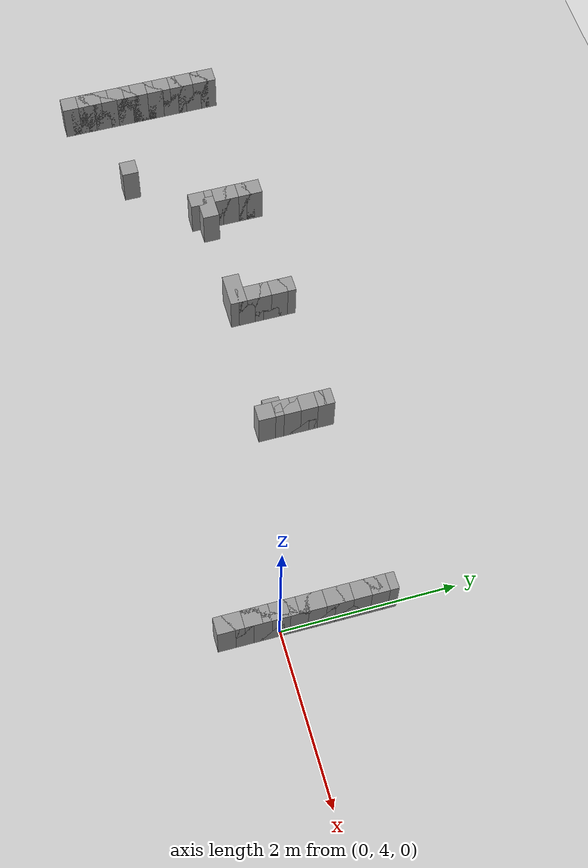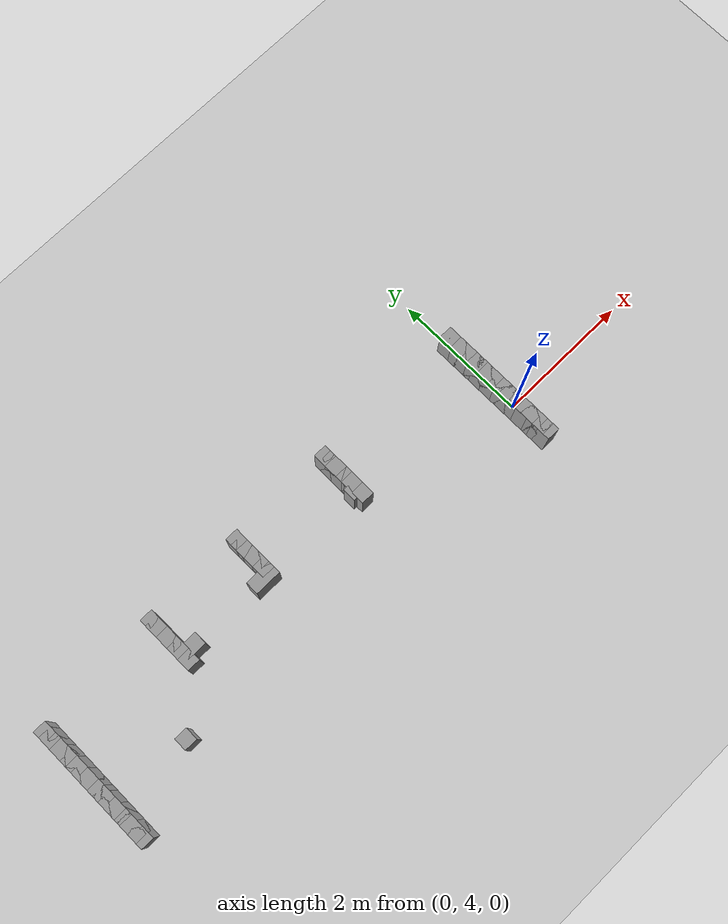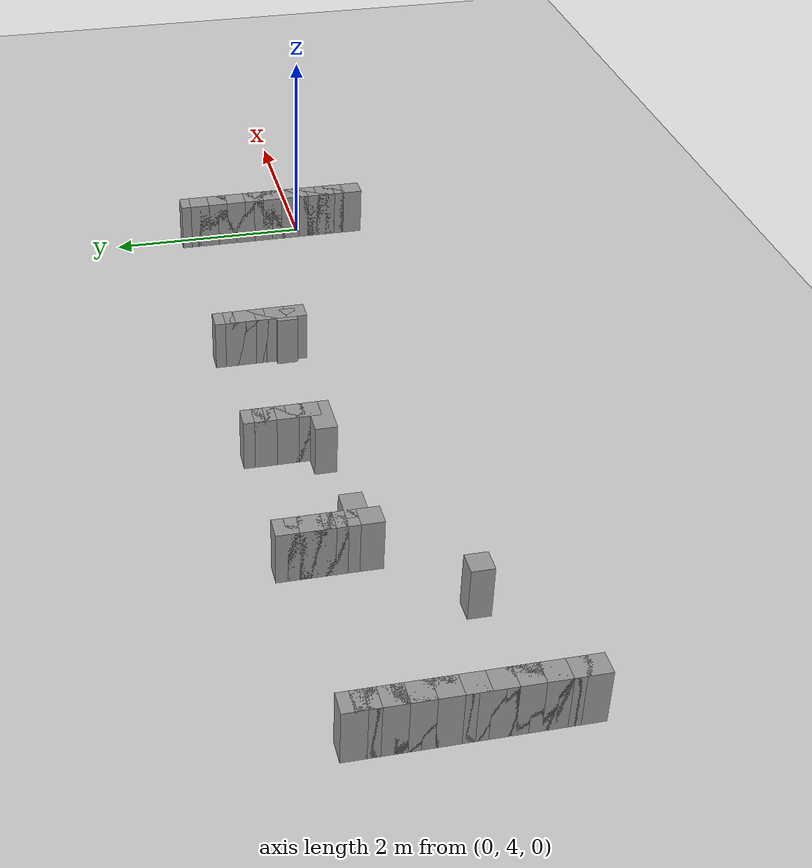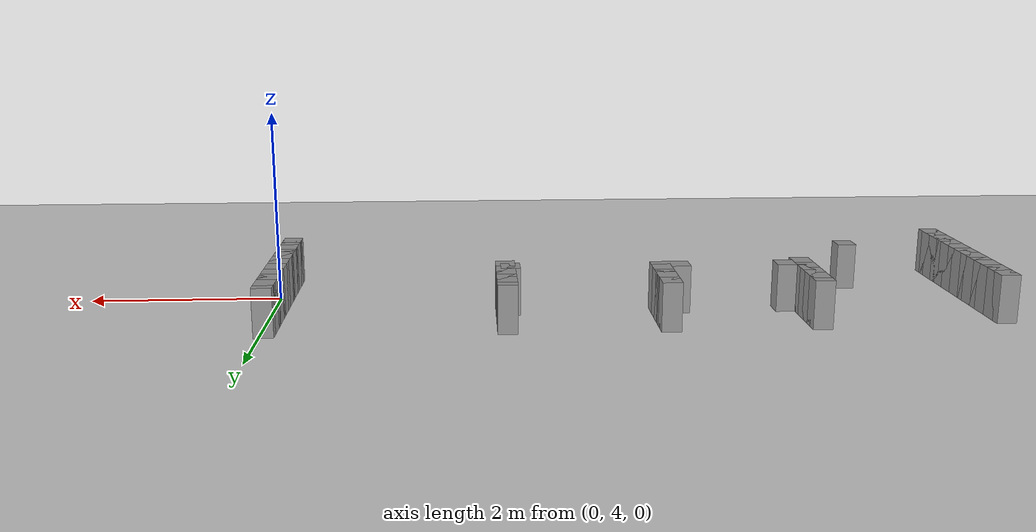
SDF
<sdf version="1.6">
 <world name="GridMap">
  <include><uri>model://sun</uri></include>
  <include><uri>model://ground_plane</uri></include>
  <model name="GridMap">
   <link name="Wall_(74.0,33.0)">
    <collision name="Wall_(74.0,33.0)_Collision">
     <geometry><box><size>0.2 0.2 0.5</size></box></geometry>
     <pose>-7.4 3.3000000000000003 0.25 0 -0 0</pose>
    </collision>
    <inertial>
     <mass>0.5</mass>
     <pose>0 0.01 0 0 0 0</pose>
     <inertia><ixx>0.004</ixx><ixy>0.001</ixy><ixz>0</ixz><iyy>0.006</iyy><iyz>0</iyz><izz>0.007</izz></inertia>
    </inertial>
    <visual name="Wall_(74.0,33.0)_Visual">
     <geometry><box><size>0.2 0.2 0.5</size></box></geometry>
     <pose>-7.4 3.3000000000000003 0.25 0 -0 0</pose>
     <material>
      <script><uri>file://media/materials/scripts/gazebo.material</uri><name>Gazebo/Grey</name></script>
      <ambient>1 1 1 1</ambient>
     </material>
     <meta><layer>0</layer></meta>
    </visual>
   </link>
   <link name="Wall_(0.5,34.0)">
    <collision name="Wall_(0.5,34.0)_Collision">
     <geometry><box><size>0.2 0.2 0.5</size></box></geometry>
     <pose>-0.05 3.4000000000000004 0.25 0 -0 0</pose>
    </collision>
    <inertial>
     <mass>0.5</mass>
     <pose>0 0.01 0 0 0 0</pose>
     <inertia><ixx>0.004</ixx><ixy>0.001</ixy><ixz>0</ixz><iyy>0.006</iyy><iyz>0</iyz><izz>0.007</izz></inertia>
    </inertial>
    <visual name="Wall_(0.5,34.0)_Visual">
     <geometry><box><size>0.2 0.2 0.5</size></box></geometry>
     <pose>-0.05 3.4000000000000004 0.25 0 -0 0</pose>
     <material>
      <script><uri>file://media/materials/scripts/gazebo.material</uri><name>Gazebo/Grey</name></script>
      <ambient>1 1 1 1</ambient>
     </material>
     <meta><layer>0</layer></meta>
    </visual>
   </link>
   <link name="Wall_(74.0,34.0)">
    <collision name="Wall_(74.0,34.0)_Collision">
     <geometry><box><size>0.2 0.2 0.5</size></box></geometry>
     <pose>-7.4 3.4000000000000004 0.25 0 -0 0</pose>
    </collision>
    <inertial>
     <mass>0.5</mass>
     <pose>0 0.01 0 0 0 0</pose>
     <inertia><ixx>0.004</ixx><ixy>0.001</ixy><ixz>0</ixz><iyy>0.006</iyy><iyz>0</iyz><izz>0.007</izz></inertia>
    </inertial>
    <visual name="Wall_(74.0,34.0)_Visual">
     <geometry><box><size>0.2 0.2 0.5</size></box></geometry>
     <pose>-7.4 3.4000000000000004 0.25 0 -0 0</pose>
     <material>
      <script><uri>file://media/materials/scripts/gazebo.material</uri><name>Gazebo/Grey</name></script>
      <ambient>1 1 1 1</ambient>
     </material>
     <meta><layer>0</layer></meta>
    </visual>
   </link>
   <link name="Wall_(0.5,35.0)">
    <collision name="Wall_(0.5,35.0)_Collision">
     <geometry><box><size>0.2 0.2 0.5</size></box></geometry>
     <pose>-0.05 3.5 0.25 0 -0 0</pose>
    </collision>
    <inertial>
     <mass>0.5</mass>
     <pose>0 0.01 0 0 0 0</pose>
     <inertia><ixx>0.004</ixx><ixy>0.001</ixy><ixz>0</ixz><iyy>0.006</iyy><iyz>0</iyz><izz>0.007</izz></inertia>
    </inertial>
    <visual name="Wall_(0.5,35.0)_Visual">
     <geometry><box><size>0.2 0.2 0.5</size></box></geometry>
     <pose>-0.05 3.5 0.25 0 -0 0</pose>
     <material>
      <script><uri>file://media/materials/scripts/gazebo.material</uri><name>Gazebo/Grey</name></script>
      <ambient>1 1 1 1</ambient>
     </material>
     <meta><layer>0</layer></meta>
    </visual>
   </link>
   <link name="Wall_(74.0,35.0)">
    <collision name="Wall_(74.0,35.0)_Collision">
     <geometry><box><size>0.2 0.2 0.5</size></box></geometry>
     <pose>-7.4 3.5 0.25 0 -0 0</pose>
    </collision>
    <inertial>
     <mass>0.5</mass>
     <pose>0 0.01 0 0 0 0</pose>
     <inertia><ixx>0.004</ixx><ixy>0.001</ixy><ixz>0</ixz><iyy>0.006</iyy><iyz>0</iyz><izz>0.007</izz></inertia>
    </inertial>
    <visual name="Wall_(74.0,35.0)_Visual">
     <geometry><box><size>0.2 0.2 0.5</size></box></geometry>
     <pose>-7.4 3.5 0.25 0 -0 0</pose>
     <material>
      <script><uri>file://media/materials/scripts/gazebo.material</uri><name>Gazebo/Grey</name></script>
      <ambient>1 1 1 1</ambient>
     </material>
     <meta><layer>0</layer></meta>
    </visual>
   </link>
   <link name="Wall_(0.5,36.0)">
    <collision name="Wall_(0.5,36.0)_Collision">
     <geometry><box><size>0.2 0.2 0.5</size></box></geometry>
     <pose>-0.05 3.6 0.25 0 -0 0</pose>
    </collision>
    <inertial>
     <mass>0.5</mass>
     <pose>0 0.01 0 0 0 0</pose>
     <inertia><ixx>0.004</ixx><ixy>0.001</ixy><ixz>0</ixz><iyy>0.006</iyy><iyz>0</iyz><izz>0.007</izz></inertia>
    </inertial>
    <visual name="Wall_(0.5,36.0)_Visual">
     <geometry><box><size>0.2 0.2 0.5</size></box></geometry>
     <pose>-0.05 3.6 0.25 0 -0 0</pose>
     <material>
      <script><uri>file://media/materials/scripts/gazebo.material</uri><name>Gazebo/Grey</name></script>
      <ambient>1 1 1 1</ambient>
     </material>
     <meta><layer>0</layer></meta>
    </visual>
   </link>
   <link name="Wall_(74.0,36.0)">
    <collision name="Wall_(74.0,36.0)_Collision">
     <geometry><box><size>0.2 0.2 0.5</size></box></geometry>
     <pose>-7.4 3.6 0.25 0 -0 0</pose>
    </collision>
    <inertial>
     <mass>0.5</mass>
     <pose>0 0.01 0 0 0 0</pose>
     <inertia><ixx>0.004</ixx><ixy>0.001</ixy><ixz>0</ixz><iyy>0.006</iyy><iyz>0</iyz><izz>0.007</izz></inertia>
    </inertial>
    <visual name="Wall_(74.0,36.0)_Visual">
     <geometry><box><size>0.2 0.2 0.5</size></box></geometry>
     <pose>-7.4 3.6 0.25 0 -0 0</pose>
     <material>
      <script><uri>file://media/materials/scripts/gazebo.material</uri><name>Gazebo/Grey</name></script>
      <ambient>1 1 1 1</ambient>
     </material>
     <meta><layer>0</layer></meta>
    </visual>
   </link>
   <link name="Wall_(0.5,37.0)">
    <collision name="Wall_(0.5,37.0)_Collision">
     <geometry><box><size>0.2 0.2 0.5</size></box></geometry>
     <pose>-0.05 3.7 0.25 0 -0 0</pose>
    </collision>
    <inertial>
     <mass>0.5</mass>
     <pose>0 0.01 0 0 0 0</pose>
     <inertia><ixx>0.004</ixx><ixy>0.001</ixy><ixz>0</ixz><iyy>0.006</iyy><iyz>0</iyz><izz>0.007</izz></inertia>
    </inertial>
    <visual name="Wall_(0.5,37.0)_Visual">
     <geometry><box><size>0.2 0.2 0.5</size></box></geometry>
     <pose>-0.05 3.7 0.25 0 -0 0</pose>
     <material>
      <script><uri>file://media/materials/scripts/gazebo.material</uri><name>Gazebo/Grey</name></script>
      <ambient>1 1 1 1</ambient>
     </material>
     <meta><layer>0</layer></meta>
    </visual>
   </link>
   <link name="Wall_(74.0,37.0)">
    <collision name="Wall_(74.0,37.0)_Collision">
     <geometry><box><size>0.2 0.2 0.5</size></box></geometry>
     <pose>-7.4 3.7 0.25 0 -0 0</pose>
    </collision>
    <inertial>
     <mass>0.5</mass>
     <pose>0 0.01 0 0 0 0</pose>
     <inertia><ixx>0.004</ixx><ixy>0.001</ixy><ixz>0</ixz><iyy>0.006</iyy><iyz>0</iyz><izz>0.007</izz></inertia>
    </inertial>
    <visual name="Wall_(74.0,37.0)_Visual">
     <geometry><box><size>0.2 0.2 0.5</size></box></geometry>
     <pose>-7.4 3.7 0.25 0 -0 0</pose>
     <material>
      <script><uri>file://media/materials/scripts/gazebo.material</uri><name>Gazebo/Grey</name></script>
      <ambient>1 1 1 1</ambient>
     </material>
     <meta><layer>0</layer></meta>
    </visual>
   </link>
   <link name="Wall_(0.5,38.0)">
    <collision name="Wall_(0.5,38.0)_Collision">
     <geometry><box><size>0.2 0.2 0.5</size></box></geometry>
     <pose>-0.05 3.8000000000000003 0.25 0 -0 0</pose>
    </collision>
    <inertial>
     <mass>0.5</mass>
     <pose>0 0.01 0 0 0 0</pose>
     <inertia><ixx>0.004</ixx><ixy>0.001</ixy><ixz>0</ixz><iyy>0.006</iyy><iyz>0</iyz><izz>0.007</izz></inertia>
    </inertial>
    <visual name="Wall_(0.5,38.0)_Visual">
     <geometry><box><size>0.2 0.2 0.5</size></box></geometry>
     <pose>-0.05 3.8000000000000003 0.25 0 -0 0</pose>
     <material>
      <script><uri>file://media/materials/scripts/gazebo.material</uri><name>Gazebo/Grey</name></script>
      <ambient>1 1 1 1</ambient>
     </material>
     <meta><layer>0</layer></meta>
    </visual>
   </link>
   <link name="Wall_(62.0,38.0)">
    <collision name="Wall_(62.0,38.0)_Collision">
     <geometry><box><size>0.2 0.2 0.5</size></box></geometry>
     <pose>-6.2 3.8000000000000003 0.25 0 -0 0</pose>
    </collision>
    <inertial>
     <mass>0.5</mass>
     <pose>0 0.01 0 0 0 0</pose>
     <inertia><ixx>0.004</ixx><ixy>0.001</ixy><ixz>0</ixz><iyy>0.006</iyy><iyz>0</iyz><izz>0.007</izz></inertia>
    </inertial>
    <visual name="Wall_(62.0,38.0)_Visual">
     <geometry><box><size>0.2 0.2 0.5</size></box></geometry>
     <pose>-6.2 3.8000000000000003 0.25 0 -0 0</pose>
     <material>
      <script><uri>file://media/materials/scripts/gazebo.material</uri><name>Gazebo/Grey</name></script>
      <ambient>1 1 1 1</ambient>
     </material>
     <meta><layer>0</layer></meta>
    </visual>
   </link>
   <link name="Wall_(74.0,38.0)">
    <collision name="Wall_(74.0,38.0)_Collision">
     <geometry><box><size>0.2 0.2 0.5</size></box></geometry>
     <pose>-7.4 3.8000000000000003 0.25 0 -0 0</pose>
    </collision>
    <inertial>
     <mass>0.5</mass>
     <pose>0 0.01 0 0 0 0</pose>
     <inertia><ixx>0.004</ixx><ixy>0.001</ixy><ixz>0</ixz><iyy>0.006</iyy><iyz>0</iyz><izz>0.007</izz></inertia>
    </inertial>
    <visual name="Wall_(74.0,38.0)_Visual">
     <geometry><box><size>0.2 0.2 0.5</size></box></geometry>
     <pose>-7.4 3.8000000000000003 0.25 0 -0 0</pose>
     <material>
      <script><uri>file://media/materials/scripts/gazebo.material</uri><name>Gazebo/Grey</name></script>
      <ambient>1 1 1 1</ambient>
     </material>
     <meta><layer>0</layer></meta>
    </visual>
   </link>
   <link name="Wall_(0.5,39.0)">
    <collision name="Wall_(0.5,39.0)_Collision">
     <geometry><box><size>0.2 0.2 0.5</size></box></geometry>
     <pose>-0.05 3.9000000000000004 0.25 0 -0 0</pose>
    </collision>
    <inertial>
     <mass>0.5</mass>
     <pose>0 0.01 0 0 0 0</pose>
     <inertia><ixx>0.004</ixx><ixy>0.001</ixy><ixz>0</ixz><iyy>0.006</iyy><iyz>0</iyz><izz>0.007</izz></inertia>
    </inertial>
    <visual name="Wall_(0.5,39.0)_Visual">
     <geometry><box><size>0.2 0.2 0.5</size></box></geometry>
     <pose>-0.05 3.9000000000000004 0.25 0 -0 0</pose>
     <material>
      <script><uri>file://media/materials/scripts/gazebo.material</uri><name>Gazebo/Grey</name></script>
      <ambient>1 1 1 1</ambient>
     </material>
     <meta><layer>0</layer></meta>
    </visual>
   </link>
   <link name="Wall_(74.0,39.0)">
    <collision name="Wall_(74.0,39.0)_Collision">
     <geometry><box><size>0.2 0.2 0.5</size></box></geometry>
     <pose>-7.4 3.9000000000000004 0.25 0 -0 0</pose>
    </collision>
    <inertial>
     <mass>0.5</mass>
     <pose>0 0.01 0 0 0 0</pose>
     <inertia><ixx>0.004</ixx><ixy>0.001</ixy><ixz>0</ixz><iyy>0.006</iyy><iyz>0</iyz><izz>0.007</izz></inertia>
    </inertial>
    <visual name="Wall_(74.0,39.0)_Visual">
     <geometry><box><size>0.2 0.2 0.5</size></box></geometry>
     <pose>-7.4 3.9000000000000004 0.25 0 -0 0</pose>
     <material>
      <script><uri>file://media/materials/scripts/gazebo.material</uri><name>Gazebo/Grey</name></script>
      <ambient>1 1 1 1</ambient>
     </material>
     <meta><layer>0</layer></meta>
    </visual>
   </link>
   <link name="Wall_(0.5,40.0)">
    <collision name="Wall_(0.5,40.0)_Collision">
     <geometry><box><size>0.2 0.2 0.5</size></box></geometry>
     <pose>-0.05 4.0 0.25 0 -0 0</pose>
    </collision>
    <inertial>
     <mass>0.5</mass>
     <pose>0 0.01 0 0 0 0</pose>
     <inertia><ixx>0.004</ixx><ixy>0.001</ixy><ixz>0</ixz><iyy>0.006</iyy><iyz>0</iyz><izz>0.007</izz></inertia>
    </inertial>
    <visual name="Wall_(0.5,40.0)_Visual">
     <geometry><box><size>0.2 0.2 0.5</size></box></geometry>
     <pose>-0.05 4.0 0.25 0 -0 0</pose>
     <material>
      <script><uri>file://media/materials/scripts/gazebo.material</uri><name>Gazebo/Grey</name></script>
      <ambient>1 1 1 1</ambient>
     </material>
     <meta><layer>0</layer></meta>
    </visual>
   </link>
   <link name="Wall_(74.0,40.0)">
    <collision name="Wall_(74.0,40.0)_Collision">
     <geometry><box><size>0.2 0.2 0.5</size></box></geometry>
     <pose>-7.4 4.0 0.25 0 -0 0</pose>
    </collision>
    <inertial>
     <mass>0.5</mass>
     <pose>0 0.01 0 0 0 0</pose>
     <inertia><ixx>0.004</ixx><ixy>0.001</ixy><ixz>0</ixz><iyy>0.006</iyy><iyz>0</iyz><izz>0.007</izz></inertia>
    </inertial>
    <visual name="Wall_(74.0,40.0)_Visual">
     <geometry><box><size>0.2 0.2 0.5</size></box></geometry>
     <pose>-7.4 4.0 0.25 0 -0 0</pose>
     <material>
      <script><uri>file://media/materials/scripts/gazebo.material</uri><name>Gazebo/Grey</name></script>
      <ambient>1 1 1 1</ambient>
     </material>
     <meta><layer>0</layer></meta>
    </visual>
   </link>
   <link name="Wall_(0.5,41.0)">
    <collision name="Wall_(0.5,41.0)_Collision">
     <geometry><box><size>0.2 0.2 0.5</size></box></geometry>
     <pose>-0.05 4.1000000000000005 0.25 0 -0 0</pose>
    </collision>
    <inertial>
     <mass>0.5</mass>
     <pose>0 0.01 0 0 0 0</pose>
     <inertia><ixx>0.004</ixx><ixy>0.001</ixy><ixz>0</ixz><iyy>0.006</iyy><iyz>0</iyz><izz>0.007</izz></inertia>
    </inertial>
    <visual name="Wall_(0.5,41.0)_Visual">
     <geometry><box><size>0.2 0.2 0.5</size></box></geometry>
     <pose>-0.05 4.1000000000000005 0.25 0 -0 0</pose>
     <material>
      <script><uri>file://media/materials/scripts/gazebo.material</uri><name>Gazebo/Grey</name></script>
      <ambient>1 1 1 1</ambient>
     </material>
     <meta><layer>0</layer></meta>
    </visual>
   </link>
   <link name="Wall_(74.0,41.0)">
    <collision name="Wall_(74.0,41.0)_Collision">
     <geometry><box><size>0.2 0.2 0.5</size></box></geometry>
     <pose>-7.4 4.1000000000000005 0.25 0 -0 0</pose>
    </collision>
    <inertial>
     <mass>0.5</mass>
     <pose>0 0.01 0 0 0 0</pose>
     <inertia><ixx>0.004</ixx><ixy>0.001</ixy><ixz>0</ixz><iyy>0.006</iyy><iyz>0</iyz><izz>0.007</izz></inertia>
    </inertial>
    <visual name="Wall_(74.0,41.0)_Visual">
     <geometry><box><size>0.2 0.2 0.5</size></box></geometry>
     <pose>-7.4 4.1000000000000005 0.25 0 -0 0</pose>
     <material>
      <script><uri>file://media/materials/scripts/gazebo.material</uri><name>Gazebo/Grey</name></script>
      <ambient>1 1 1 1</ambient>
     </material>
     <meta><layer>0</layer></meta>
    </visual>
   </link>
   <link name="Wall_(0.5,42.0)">
    <collision name="Wall_(0.5,42.0)_Collision">
     <geometry><box><size>0.2 0.2 0.5</size></box></geometry>
     <pose>-0.05 4.2 0.25 0 -0 0</pose>
    </collision>
    <inertial>
     <mass>0.5</mass>
     <pose>0 0.01 0 0 0 0</pose>
     <inertia><ixx>0.004</ixx><ixy>0.001</ixy><ixz>0</ixz><iyy>0.006</iyy><iyz>0</iyz><izz>0.007</izz></inertia>
    </inertial>
    <visual name="Wall_(0.5,42.0)_Visual">
     <geometry><box><size>0.2 0.2 0.5</size></box></geometry>
     <pose>-0.05 4.2 0.25 0 -0 0</pose>
     <material>
      <script><uri>file://media/materials/scripts/gazebo.material</uri><name>Gazebo/Grey</name></script>
      <ambient>1 1 1 1</ambient>
     </material>
     <meta><layer>0</layer></meta>
    </visual>
   </link>
   <link name="Wall_(74.0,42.0)">
    <collision name="Wall_(74.0,42.0)_Collision">
     <geometry><box><size>0.2 0.2 0.5</size></box></geometry>
     <pose>-7.4 4.2 0.25 0 -0 0</pose>
    </collision>
    <inertial>
     <mass>0.5</mass>
     <pose>0 0.01 0 0 0 0</pose>
     <inertia><ixx>0.004</ixx><ixy>0.001</ixy><ixz>0</ixz><iyy>0.006</iyy><iyz>0</iyz><izz>0.007</izz></inertia>
    </inertial>
    <visual name="Wall_(74.0,42.0)_Visual">
     <geometry><box><size>0.2 0.2 0.5</size></box></geometry>
     <pose>-7.4 4.2 0.25 0 -0 0</pose>
     <material>
      <script><uri>file://media/materials/scripts/gazebo.material</uri><name>Gazebo/Grey</name></script>
      <ambient>1 1 1 1</ambient>
     </material>
     <meta><layer>0</layer></meta>
    </visual>
   </link>
   <link name="Wall_(0.5,43.0)">
    <collision name="Wall_(0.5,43.0)_Collision">
     <geometry><box><size>0.2 0.2 0.5</size></box></geometry>
     <pose>-0.05 4.3 0.25 0 -0 0</pose>
    </collision>
    <inertial>
     <mass>0.5</mass>
     <pose>0 0.01 0 0 0 0</pose>
     <inertia><ixx>0.004</ixx><ixy>0.001</ixy><ixz>0</ixz><iyy>0.006</iyy><iyz>0</iyz><izz>0.007</izz></inertia>
    </inertial>
    <visual name="Wall_(0.5,43.0)_Visual">
     <geometry><box><size>0.2 0.2 0.5</size></box></geometry>
     <pose>-0.05 4.3 0.25 0 -0 0</pose>
     <material>
      <script><uri>file://media/materials/scripts/gazebo.material</uri><name>Gazebo/Grey</name></script>
      <ambient>1 1 1 1</ambient>
     </material>
     <meta><layer>0</layer></meta>
    </visual>
   </link>
   <link name="Wall_(74.0,43.0)">
    <collision name="Wall_(74.0,43.0)_Collision">
     <geometry><box><size>0.2 0.2 0.5</size></box></geometry>
     <pose>-7.4 4.3 0.25 0 -0 0</pose>
    </collision>
    <inertial>
     <mass>0.5</mass>
     <pose>0 0.01 0 0 0 0</pose>
     <inertia><ixx>0.004</ixx><ixy>0.001</ixy><ixz>0</ixz><iyy>0.006</iyy><iyz>0</iyz><izz>0.007</izz></inertia>
    </inertial>
    <visual name="Wall_(74.0,43.0)_Visual">
     <geometry><box><size>0.2 0.2 0.5</size></box></geometry>
     <pose>-7.4 4.3 0.25 0 -0 0</pose>
     <material>
      <script><uri>file://media/materials/scripts/gazebo.material</uri><name>Gazebo/Grey</name></script>
      <ambient>1 1 1 1</ambient>
     </material>
     <meta><layer>0</layer></meta>
    </visual>
   </link>
   <link name="Wall_(0.5,44.0)">
    <collision name="Wall_(0.5,44.0)_Collision">
     <geometry><box><size>0.2 0.2 0.5</size></box></geometry>
     <pose>-0.05 4.4 0.25 0 -0 0</pose>
    </collision>
    <inertial>
     <mass>0.5</mass>
     <pose>0 0.01 0 0 0 0</pose>
     <inertia><ixx>0.004</ixx><ixy>0.001</ixy><ixz>0</ixz><iyy>0.006</iyy><iyz>0</iyz><izz>0.007</izz></inertia>
    </inertial>
    <visual name="Wall_(0.5,44.0)_Visual">
     <geometry><box><size>0.2 0.2 0.5</size></box></geometry>
     <pose>-0.05 4.4 0.25 0 -0 0</pose>
     <material>
      <script><uri>file://media/materials/scripts/gazebo.material</uri><name>Gazebo/Grey</name></script>
      <ambient>1 1 1 1</ambient>
     </material>
     <meta><layer>0</layer></meta>
    </visual>
   </link>
   <link name="Wall_(74.0,44.0)">
    <collision name="Wall_(74.0,44.0)_Collision">
     <geometry><box><size>0.2 0.2 0.5</size></box></geometry>
     <pose>-7.4 4.4 0.25 0 -0 0</pose>
    </collision>
    <inertial>
     <mass>0.5</mass>
     <pose>0 0.01 0 0 0 0</pose>
     <inertia><ixx>0.004</ixx><ixy>0.001</ixy><ixz>0</ixz><iyy>0.006</iyy><iyz>0</iyz><izz>0.007</izz></inertia>
    </inertial>
    <visual name="Wall_(74.0,44.0)_Visual">
     <geometry><box><size>0.2 0.2 0.5</size></box></geometry>
     <pose>-7.4 4.4 0.25 0 -0 0</pose>
     <material>
      <script><uri>file://media/materials/scripts/gazebo.material</uri><name>Gazebo/Grey</name></script>
      <ambient>1 1 1 1</ambient>
     </material>
     <meta><layer>0</layer></meta>
    </visual>
   </link>
   <link name="Wall_(0.5,45.0)">
    <collision name="Wall_(0.5,45.0)_Collision">
     <geometry><box><size>0.2 0.2 0.5</size></box></geometry>
     <pose>-0.05 4.5 0.25 0 -0 0</pose>
    </collision>
    <inertial>
     <mass>0.5</mass>
     <pose>0 0.01 0 0 0 0</pose>
     <inertia><ixx>0.004</ixx><ixy>0.001</ixy><ixz>0</ixz><iyy>0.006</iyy><iyz>0</iyz><izz>0.007</izz></inertia>
    </inertial>
    <visual name="Wall_(0.5,45.0)_Visual">
     <geometry><box><size>0.2 0.2 0.5</size></box></geometry>
     <pose>-0.05 4.5 0.25 0 -0 0</pose>
     <material>
      <script><uri>file://media/materials/scripts/gazebo.material</uri><name>Gazebo/Grey</name></script>
      <ambient>1 1 1 1</ambient>
     </material>
     <meta><layer>0</layer></meta>
    </visual>
   </link>
   <link name="Wall_(24.0,45.0)">
    <collision name="Wall_(24.0,45.0)_Collision">
     <geometry><box><size>0.2 0.2 0.5</size></box></geometry>
     <pose>-2.4000000000000004 4.5 0.25 0 -0 0</pose>
    </collision>
    <inertial>
     <mass>0.5</mass>
     <pose>0 0.01 0 0 0 0</pose>
     <inertia><ixx>0.004</ixx><ixy>0.001</ixy><ixz>0</ixz><iyy>0.006</iyy><iyz>0</iyz><izz>0.007</izz></inertia>
    </inertial>
    <visual name="Wall_(24.0,45.0)_Visual">
     <geometry><box><size>0.2 0.2 0.5</size></box></geometry>
     <pose>-2.4000000000000004 4.5 0.25 0 -0 0</pose>
     <material>
      <script><uri>file://media/materials/scripts/gazebo.material</uri><name>Gazebo/Grey</name></script>
      <ambient>1 1 1 1</ambient>
     </material>
     <meta><layer>0</layer></meta>
    </visual>
   </link>
   <link name="Wall_(55.0,45.0)">
    <collision name="Wall_(55.0,45.0)_Collision">
     <geometry><box><size>0.2 0.2 0.5</size></box></geometry>
     <pose>-5.5 4.5 0.25 0 -0 0</pose>
    </collision>
    <inertial>
     <mass>0.5</mass>
     <pose>0 0.01 0 0 0 0</pose>
     <inertia><ixx>0.004</ixx><ixy>0.001</ixy><ixz>0</ixz><iyy>0.006</iyy><iyz>0</iyz><izz>0.007</izz></inertia>
    </inertial>
    <visual name="Wall_(55.0,45.0)_Visual">
     <geometry><box><size>0.2 0.2 0.5</size></box></geometry>
     <pose>-5.5 4.5 0.25 0 -0 0</pose>
     <material>
      <script><uri>file://media/materials/scripts/gazebo.material</uri><name>Gazebo/Grey</name></script>
      <ambient>1 1 1 1</ambient>
     </material>
     <meta><layer>0</layer></meta>
    </visual>
   </link>
   <link name="Wall_(74.0,45.0)">
    <collision name="Wall_(74.0,45.0)_Collision">
     <geometry><box><size>0.2 0.2 0.5</size></box></geometry>
     <pose>-7.4 4.5 0.25 0 -0 0</pose>
    </collision>
    <inertial>
     <mass>0.5</mass>
     <pose>0 0.01 0 0 0 0</pose>
     <inertia><ixx>0.004</ixx><ixy>0.001</ixy><ixz>0</ixz><iyy>0.006</iyy><iyz>0</iyz><izz>0.007</izz></inertia>
    </inertial>
    <visual name="Wall_(74.0,45.0)_Visual">
     <geometry><box><size>0.2 0.2 0.5</size></box></geometry>
     <pose>-7.4 4.5 0.25 0 -0 0</pose>
     <material>
      <script><uri>file://media/materials/scripts/gazebo.material</uri><name>Gazebo/Grey</name></script>
      <ambient>1 1 1 1</ambient>
     </material>
     <meta><layer>0</layer></meta>
    </visual>
   </link>
   <link name="Wall_(0.5,46.0)">
    <collision name="Wall_(0.5,46.0)_Collision">
     <geometry><box><size>0.2 0.2 0.5</size></box></geometry>
     <pose>-0.05 4.6000000000000005 0.25 0 -0 0</pose>
    </collision>
    <inertial>
     <mass>0.5</mass>
     <pose>0 0.01 0 0 0 0</pose>
     <inertia><ixx>0.004</ixx><ixy>0.001</ixy><ixz>0</ixz><iyy>0.006</iyy><iyz>0</iyz><izz>0.007</izz></inertia>
    </inertial>
    <visual name="Wall_(0.5,46.0)_Visual">
     <geometry><box><size>0.2 0.2 0.5</size></box></geometry>
     <pose>-0.05 4.6000000000000005 0.25 0 -0 0</pose>
     <material>
      <script><uri>file://media/materials/scripts/gazebo.material</uri><name>Gazebo/Grey</name></script>
      <ambient>1 1 1 1</ambient>
     </material>
     <meta><layer>0</layer></meta>
    </visual>
   </link>
   <link name="Wall_(24.5,46.0)">
    <collision name="Wall_(24.5,46.0)_Collision">
     <geometry><box><size>0.2 0.2 0.5</size></box></geometry>
     <pose>-2.45 4.6000000000000005 0.25 0 -0 0</pose>
    </collision>
    <inertial>
     <mass>0.5</mass>
     <pose>0 0.01 0 0 0 0</pose>
     <inertia><ixx>0.004</ixx><ixy>0.001</ixy><ixz>0</ixz><iyy>0.006</iyy><iyz>0</iyz><izz>0.007</izz></inertia>
    </inertial>
    <visual name="Wall_(24.5,46.0)_Visual">
     <geometry><box><size>0.2 0.2 0.5</size></box></geometry>
     <pose>-2.45 4.6000000000000005 0.25 0 -0 0</pose>
     <material>
      <script><uri>file://media/materials/scripts/gazebo.material</uri><name>Gazebo/Grey</name></script>
      <ambient>1 1 1 1</ambient>
     </material>
     <meta><layer>0</layer></meta>
    </visual>
   </link>
   <link name="Wall_(41.0,46.0)">
    <collision name="Wall_(41.0,46.0)_Collision">
     <geometry><box><size>0.4 0.2 0.5</size></box></geometry>
     <pose>-4.1000000000000005 4.6000000000000005 0.25 0 -0 0</pose>
    </collision>
    <inertial>
     <mass>0.5</mass>
     <pose>0 0.01 0 0 0 0</pose>
     <inertia><ixx>0.004</ixx><ixy>0.001</ixy><ixz>0</ixz><iyy>0.006</iyy><iyz>0</iyz><izz>0.007</izz></inertia>
    </inertial>
    <visual name="Wall_(41.0,46.0)_Visual">
     <geometry><box><size>0.4 0.2 0.5</size></box></geometry>
     <pose>-4.1000000000000005 4.6000000000000005 0.25 0 -0 0</pose>
     <material>
      <script><uri>file://media/materials/scripts/gazebo.material</uri><name>Gazebo/Grey</name></script>
      <ambient>1 1 1 1</ambient>
     </material>
     <meta><layer>0</layer></meta>
    </visual>
   </link>
   <link name="Wall_(53.5,46.0)">
    <collision name="Wall_(53.5,46.0)_Collision">
     <geometry><box><size>0.30000000000000004 0.2 0.5</size></box></geometry>
     <pose>-5.3500000000000005 4.6000000000000005 0.25 0 -0 0</pose>
    </collision>
    <inertial>
     <mass>0.5</mass>
     <pose>0 0.01 0 0 0 0</pose>
     <inertia><ixx>0.004</ixx><ixy>0.001</ixy><ixz>0</ixz><iyy>0.006</iyy><iyz>0</iyz><izz>0.007</izz></inertia>
    </inertial>
    <visual name="Wall_(53.5,46.0)_Visual">
     <geometry><box><size>0.30000000000000004 0.2 0.5</size></box></geometry>
     <pose>-5.3500000000000005 4.6000000000000005 0.25 0 -0 0</pose>
     <material>
      <script><uri>file://media/materials/scripts/gazebo.material</uri><name>Gazebo/Grey</name></script>
      <ambient>1 1 1 1</ambient>
     </material>
     <meta><layer>0</layer></meta>
    </visual>
   </link>
   <link name="Wall_(74.0,46.0)">
    <collision name="Wall_(74.0,46.0)_Collision">
     <geometry><box><size>0.2 0.2 0.5</size></box></geometry>
     <pose>-7.4 4.6000000000000005 0.25 0 -0 0</pose>
    </collision>
    <inertial>
     <mass>0.5</mass>
     <pose>0 0.01 0 0 0 0</pose>
     <inertia><ixx>0.004</ixx><ixy>0.001</ixy><ixz>0</ixz><iyy>0.006</iyy><iyz>0</iyz><izz>0.007</izz></inertia>
    </inertial>
    <visual name="Wall_(74.0,46.0)_Visual">
     <geometry><box><size>0.2 0.2 0.5</size></box></geometry>
     <pose>-7.4 4.6000000000000005 0.25 0 -0 0</pose>
     <material>
      <script><uri>file://media/materials/scripts/gazebo.material</uri><name>Gazebo/Grey</name></script>
      <ambient>1 1 1 1</ambient>
     </material>
     <meta><layer>0</layer></meta>
    </visual>
   </link>
   <link name="Wall_(0.5,47.0)">
    <collision name="Wall_(0.5,47.0)_Collision">
     <geometry><box><size>0.2 0.2 0.5</size></box></geometry>
     <pose>-0.05 4.7 0.25 0 -0 0</pose>
    </collision>
    <inertial>
     <mass>0.5</mass>
     <pose>0 0.01 0 0 0 0</pose>
     <inertia><ixx>0.004</ixx><ixy>0.001</ixy><ixz>0</ixz><iyy>0.006</iyy><iyz>0</iyz><izz>0.007</izz></inertia>
    </inertial>
    <visual name="Wall_(0.5,47.0)_Visual">
     <geometry><box><size>0.2 0.2 0.5</size></box></geometry>
     <pose>-0.05 4.7 0.25 0 -0 0</pose>
     <material>
      <script><uri>file://media/materials/scripts/gazebo.material</uri><name>Gazebo/Grey</name></script>
      <ambient>1 1 1 1</ambient>
     </material>
     <meta><layer>0</layer></meta>
    </visual>
   </link>
   <link name="Wall_(24.0,47.0)">
    <collision name="Wall_(24.0,47.0)_Collision">
     <geometry><box><size>0.2 0.2 0.5</size></box></geometry>
     <pose>-2.4000000000000004 4.7 0.25 0 -0 0</pose>
    </collision>
    <inertial>
     <mass>0.5</mass>
     <pose>0 0.01 0 0 0 0</pose>
     <inertia><ixx>0.004</ixx><ixy>0.001</ixy><ixz>0</ixz><iyy>0.006</iyy><iyz>0</iyz><izz>0.007</izz></inertia>
    </inertial>
    <visual name="Wall_(24.0,47.0)_Visual">
     <geometry><box><size>0.2 0.2 0.5</size></box></geometry>
     <pose>-2.4000000000000004 4.7 0.25 0 -0 0</pose>
     <material>
      <script><uri>file://media/materials/scripts/gazebo.material</uri><name>Gazebo/Grey</name></script>
      <ambient>1 1 1 1</ambient>
     </material>
     <meta><layer>0</layer></meta>
    </visual>
   </link>
   <link name="Wall_(40.0,47.0)">
    <collision name="Wall_(40.0,47.0)_Collision">
     <geometry><box><size>0.2 0.2 0.5</size></box></geometry>
     <pose>-4.0 4.7 0.25 0 -0 0</pose>
    </collision>
    <inertial>
     <mass>0.5</mass>
     <pose>0 0.01 0 0 0 0</pose>
     <inertia><ixx>0.004</ixx><ixy>0.001</ixy><ixz>0</ixz><iyy>0.006</iyy><iyz>0</iyz><izz>0.007</izz></inertia>
    </inertial>
    <visual name="Wall_(40.0,47.0)_Visual">
     <geometry><box><size>0.2 0.2 0.5</size></box></geometry>
     <pose>-4.0 4.7 0.25 0 -0 0</pose>
     <material>
      <script><uri>file://media/materials/scripts/gazebo.material</uri><name>Gazebo/Grey</name></script>
      <ambient>1 1 1 1</ambient>
     </material>
     <meta><layer>0</layer></meta>
    </visual>
   </link>
   <link name="Wall_(55.0,47.0)">
    <collision name="Wall_(55.0,47.0)_Collision">
     <geometry><box><size>0.2 0.2 0.5</size></box></geometry>
     <pose>-5.5 4.7 0.25 0 -0 0</pose>
    </collision>
    <inertial>
     <mass>0.5</mass>
     <pose>0 0.01 0 0 0 0</pose>
     <inertia><ixx>0.004</ixx><ixy>0.001</ixy><ixz>0</ixz><iyy>0.006</iyy><iyz>0</iyz><izz>0.007</izz></inertia>
    </inertial>
    <visual name="Wall_(55.0,47.0)_Visual">
     <geometry><box><size>0.2 0.2 0.5</size></box></geometry>
     <pose>-5.5 4.7 0.25 0 -0 0</pose>
     <material>
      <script><uri>file://media/materials/scripts/gazebo.material</uri><name>Gazebo/Grey</name></script>
      <ambient>1 1 1 1</ambient>
     </material>
     <meta><layer>0</layer></meta>
    </visual>
   </link>
   <link name="Wall_(74.0,47.0)">
    <collision name="Wall_(74.0,47.0)_Collision">
     <geometry><box><size>0.2 0.2 0.5</size></box></geometry>
     <pose>-7.4 4.7 0.25 0 -0 0</pose>
    </collision>
    <inertial>
     <mass>0.5</mass>
     <pose>0 0.01 0 0 0 0</pose>
     <inertia><ixx>0.004</ixx><ixy>0.001</ixy><ixz>0</ixz><iyy>0.006</iyy><iyz>0</iyz><izz>0.007</izz></inertia>
    </inertial>
    <visual name="Wall_(74.0,47.0)_Visual">
     <geometry><box><size>0.2 0.2 0.5</size></box></geometry>
     <pose>-7.4 4.7 0.25 0 -0 0</pose>
     <material>
      <script><uri>file://media/materials/scripts/gazebo.material</uri><name>Gazebo/Grey</name></script>
      <ambient>1 1 1 1</ambient>
     </material>
     <meta><layer>0</layer></meta>
    </visual>
   </link>
   <link name="Wall_(0.5,48.0)">
    <collision name="Wall_(0.5,48.0)_Collision">
     <geometry><box><size>0.2 0.2 0.5</size></box></geometry>
     <pose>-0.05 4.800000000000001 0.25 0 -0 0</pose>
    </collision>
    <inertial>
     <mass>0.5</mass>
     <pose>0 0.01 0 0 0 0</pose>
     <inertia><ixx>0.004</ixx><ixy>0.001</ixy><ixz>0</ixz><iyy>0.006</iyy><iyz>0</iyz><izz>0.007</izz></inertia>
    </inertial>
    <visual name="Wall_(0.5,48.0)_Visual">
     <geometry><box><size>0.2 0.2 0.5</size></box></geometry>
     <pose>-0.05 4.800000000000001 0.25 0 -0 0</pose>
     <material>
      <script><uri>file://media/materials/scripts/gazebo.material</uri><name>Gazebo/Grey</name></script>
      <ambient>1 1 1 1</ambient>
     </material>
     <meta><layer>0</layer></meta>
    </visual>
   </link>
   <link name="Wall_(24.0,48.0)">
    <collision name="Wall_(24.0,48.0)_Collision">
     <geometry><box><size>0.2 0.2 0.5</size></box></geometry>
     <pose>-2.4000000000000004 4.800000000000001 0.25 0 -0 0</pose>
    </collision>
    <inertial>
     <mass>0.5</mass>
     <pose>0 0.01 0 0 0 0</pose>
     <inertia><ixx>0.004</ixx><ixy>0.001</ixy><ixz>0</ixz><iyy>0.006</iyy><iyz>0</iyz><izz>0.007</izz></inertia>
    </inertial>
    <visual name="Wall_(24.0,48.0)_Visual">
     <geometry><box><size>0.2 0.2 0.5</size></box></geometry>
     <pose>-2.4000000000000004 4.800000000000001 0.25 0 -0 0</pose>
     <material>
      <script><uri>file://media/materials/scripts/gazebo.material</uri><name>Gazebo/Grey</name></script>
      <ambient>1 1 1 1</ambient>
     </material>
     <meta><layer>0</layer></meta>
    </visual>
   </link>
   <link name="Wall_(40.0,48.0)">
    <collision name="Wall_(40.0,48.0)_Collision">
     <geometry><box><size>0.2 0.2 0.5</size></box></geometry>
     <pose>-4.0 4.800000000000001 0.25 0 -0 0</pose>
    </collision>
    <inertial>
     <mass>0.5</mass>
     <pose>0 0.01 0 0 0 0</pose>
     <inertia><ixx>0.004</ixx><ixy>0.001</ixy><ixz>0</ixz><iyy>0.006</iyy><iyz>0</iyz><izz>0.007</izz></inertia>
    </inertial>
    <visual name="Wall_(40.0,48.0)_Visual">
     <geometry><box><size>0.2 0.2 0.5</size></box></geometry>
     <pose>-4.0 4.800000000000001 0.25 0 -0 0</pose>
     <material>
      <script><uri>file://media/materials/scripts/gazebo.material</uri><name>Gazebo/Grey</name></script>
      <ambient>1 1 1 1</ambient>
     </material>
     <meta><layer>0</layer></meta>
    </visual>
   </link>
   <link name="Wall_(55.0,48.0)">
    <collision name="Wall_(55.0,48.0)_Collision">
     <geometry><box><size>0.2 0.2 0.5</size></box></geometry>
     <pose>-5.5 4.800000000000001 0.25 0 -0 0</pose>
    </collision>
    <inertial>
     <mass>0.5</mass>
     <pose>0 0.01 0 0 0 0</pose>
     <inertia><ixx>0.004</ixx><ixy>0.001</ixy><ixz>0</ixz><iyy>0.006</iyy><iyz>0</iyz><izz>0.007</izz></inertia>
    </inertial>
    <visual name="Wall_(55.0,48.0)_Visual">
     <geometry><box><size>0.2 0.2 0.5</size></box></geometry>
     <pose>-5.5 4.800000000000001 0.25 0 -0 0</pose>
     <material>
      <script><uri>file://media/materials/scripts/gazebo.material</uri><name>Gazebo/Grey</name></script>
      <ambient>1 1 1 1</ambient>
     </material>
     <meta><layer>0</layer></meta>
    </visual>
   </link>
   <link name="Wall_(74.0,48.0)">
    <collision name="Wall_(74.0,48.0)_Collision">
     <geometry><box><size>0.2 0.2 0.5</size></box></geometry>
     <pose>-7.4 4.800000000000001 0.25 0 -0 0</pose>
    </collision>
    <inertial>
     <mass>0.5</mass>
     <pose>0 0.01 0 0 0 0</pose>
     <inertia><ixx>0.004</ixx><ixy>0.001</ixy><ixz>0</ixz><iyy>0.006</iyy><iyz>0</iyz><izz>0.007</izz></inertia>
    </inertial>
    <visual name="Wall_(74.0,48.0)_Visual">
     <geometry><box><size>0.2 0.2 0.5</size></box></geometry>
     <pose>-7.4 4.800000000000001 0.25 0 -0 0</pose>
     <material>
      <script><uri>file://media/materials/scripts/gazebo.material</uri><name>Gazebo/Grey</name></script>
      <ambient>1 1 1 1</ambient>
     </material>
     <meta><layer>0</layer></meta>
    </visual>
   </link>
   <link name="Wall_(0.5,49.0)">
    <collision name="Wall_(0.5,49.0)_Collision">
     <geometry><box><size>0.2 0.2 0.5</size></box></geometry>
     <pose>-0.05 4.9 0.25 0 -0 0</pose>
    </collision>
    <inertial>
     <mass>0.5</mass>
     <pose>0 0.01 0 0 0 0</pose>
     <inertia><ixx>0.004</ixx><ixy>0.001</ixy><ixz>0</ixz><iyy>0.006</iyy><iyz>0</iyz><izz>0.007</izz></inertia>
    </inertial>
    <visual name="Wall_(0.5,49.0)_Visual">
     <geometry><box><size>0.2 0.2 0.5</size></box></geometry>
     <pose>-0.05 4.9 0.25 0 -0 0</pose>
     <material>
      <script><uri>file://media/materials/scripts/gazebo.material</uri><name>Gazebo/Grey</name></script>
      <ambient>1 1 1 1</ambient>
     </material>
     <meta><layer>0</layer></meta>
    </visual>
   </link>
   <link name="Wall_(24.0,49.0)">
    <collision name="Wall_(24.0,49.0)_Collision">
     <geometry><box><size>0.2 0.2 0.5</size></box></geometry>
     <pose>-2.4000000000000004 4.9 0.25 0 -0 0</pose>
    </collision>
    <inertial>
     <mass>0.5</mass>
     <pose>0 0.01 0 0 0 0</pose>
     <inertia><ixx>0.004</ixx><ixy>0.001</ixy><ixz>0</ixz><iyy>0.006</iyy><iyz>0</iyz><izz>0.007</izz></inertia>
    </inertial>
    <visual name="Wall_(24.0,49.0)_Visual">
     <geometry><box><size>0.2 0.2 0.5</size></box></geometry>
     <pose>-2.4000000000000004 4.9 0.25 0 -0 0</pose>
     <material>
      <script><uri>file://media/materials/scripts/gazebo.material</uri><name>Gazebo/Grey</name></script>
      <ambient>1 1 1 1</ambient>
     </material>
     <meta><layer>0</layer></meta>
    </visual>
   </link>
   <link name="Wall_(40.0,49.0)">
    <collision name="Wall_(40.0,49.0)_Collision">
     <geometry><box><size>0.2 0.2 0.5</size></box></geometry>
     <pose>-4.0 4.9 0.25 0 -0 0</pose>
    </collision>
    <inertial>
     <mass>0.5</mass>
     <pose>0 0.01 0 0 0 0</pose>
     <inertia><ixx>0.004</ixx><ixy>0.001</ixy><ixz>0</ixz><iyy>0.006</iyy><iyz>0</iyz><izz>0.007</izz></inertia>
    </inertial>
    <visual name="Wall_(40.0,49.0)_Visual">
     <geometry><box><size>0.2 0.2 0.5</size></box></geometry>
     <pose>-4.0 4.9 0.25 0 -0 0</pose>
     <material>
      <script><uri>file://media/materials/scripts/gazebo.material</uri><name>Gazebo/Grey</name></script>
      <ambient>1 1 1 1</ambient>
     </material>
     <meta><layer>0</layer></meta>
    </visual>
   </link>
   <link name="Wall_(55.0,49.0)">
    <collision name="Wall_(55.0,49.0)_Collision">
     <geometry><box><size>0.2 0.2 0.5</size></box></geometry>
     <pose>-5.5 4.9 0.25 0 -0 0</pose>
    </collision>
    <inertial>
     <mass>0.5</mass>
     <pose>0 0.01 0 0 0 0</pose>
     <inertia><ixx>0.004</ixx><ixy>0.001</ixy><ixz>0</ixz><iyy>0.006</iyy><iyz>0</iyz><izz>0.007</izz></inertia>
    </inertial>
    <visual name="Wall_(55.0,49.0)_Visual">
     <geometry><box><size>0.2 0.2 0.5</size></box></geometry>
     <pose>-5.5 4.9 0.25 0 -0 0</pose>
     <material>
      <script><uri>file://media/materials/scripts/gazebo.material</uri><name>Gazebo/Grey</name></script>
      <ambient>1 1 1 1</ambient>
     </material>
     <meta><layer>0</layer></meta>
    </visual>
   </link>
   <link name="Wall_(74.0,49.0)">
    <collision name="Wall_(74.0,49.0)_Collision">
     <geometry><box><size>0.2 0.2 0.5</size></box></geometry>
     <pose>-7.4 4.9 0.25 0 -0 0</pose>
    </collision>
    <inertial>
     <mass>0.5</mass>
     <pose>0 0.01 0 0 0 0</pose>
     <inertia><ixx>0.004</ixx><ixy>0.001</ixy><ixz>0</ixz><iyy>0.006</iyy><iyz>0</iyz><izz>0.007</izz></inertia>
    </inertial>
    <visual name="Wall_(74.0,49.0)_Visual">
     <geometry><box><size>0.2 0.2 0.5</size></box></geometry>
     <pose>-7.4 4.9 0.25 0 -0 0</pose>
     <material>
      <script><uri>file://media/materials/scripts/gazebo.material</uri><name>Gazebo/Grey</name></script>
      <ambient>1 1 1 1</ambient>
     </material>
     <meta><layer>0</layer></meta>
    </visual>
   </link>
   <link name="Wall_(0.5,50.0)">
    <collision name="Wall_(0.5,50.0)_Collision">
     <geometry><box><size>0.2 0.2 0.5</size></box></geometry>
     <pose>-0.05 5.0 0.25 0 -0 0</pose>
    </collision>
    <inertial>
     <mass>0.5</mass>
     <pose>0 0.01 0 0 0 0</pose>
     <inertia><ixx>0.004</ixx><ixy>0.001</ixy><ixz>0</ixz><iyy>0.006</iyy><iyz>0</iyz><izz>0.007</izz></inertia>
    </inertial>
    <visual name="Wall_(0.5,50.0)_Visual">
     <geometry><box><size>0.2 0.2 0.5</size></box></geometry>
     <pose>-0.05 5.0 0.25 0 -0 0</pose>
     <material>
      <script><uri>file://media/materials/scripts/gazebo.material</uri><name>Gazebo/Grey</name></script>
      <ambient>1 1 1 1</ambient>
     </material>
     <meta><layer>0</layer></meta>
    </visual>
   </link>
   <link name="Wall_(24.0,50.0)">
    <collision name="Wall_(24.0,50.0)_Collision">
     <geometry><box><size>0.2 0.2 0.5</size></box></geometry>
     <pose>-2.4000000000000004 5.0 0.25 0 -0 0</pose>
    </collision>
    <inertial>
     <mass>0.5</mass>
     <pose>0 0.01 0 0 0 0</pose>
     <inertia><ixx>0.004</ixx><ixy>0.001</ixy><ixz>0</ixz><iyy>0.006</iyy><iyz>0</iyz><izz>0.007</izz></inertia>
    </inertial>
    <visual name="Wall_(24.0,50.0)_Visual">
     <geometry><box><size>0.2 0.2 0.5</size></box></geometry>
     <pose>-2.4000000000000004 5.0 0.25 0 -0 0</pose>
     <material>
      <script><uri>file://media/materials/scripts/gazebo.material</uri><name>Gazebo/Grey</name></script>
      <ambient>1 1 1 1</ambient>
     </material>
     <meta><layer>0</layer></meta>
    </visual>
   </link>
   <link name="Wall_(40.0,50.0)">
    <collision name="Wall_(40.0,50.0)_Collision">
     <geometry><box><size>0.2 0.2 0.5</size></box></geometry>
     <pose>-4.0 5.0 0.25 0 -0 0</pose>
    </collision>
    <inertial>
     <mass>0.5</mass>
     <pose>0 0.01 0 0 0 0</pose>
     <inertia><ixx>0.004</ixx><ixy>0.001</ixy><ixz>0</ixz><iyy>0.006</iyy><iyz>0</iyz><izz>0.007</izz></inertia>
    </inertial>
    <visual name="Wall_(40.0,50.0)_Visual">
     <geometry><box><size>0.2 0.2 0.5</size></box></geometry>
     <pose>-4.0 5.0 0.25 0 -0 0</pose>
     <material>
      <script><uri>file://media/materials/scripts/gazebo.material</uri><name>Gazebo/Grey</name></script>
      <ambient>1 1 1 1</ambient>
     </material>
     <meta><layer>0</layer></meta>
    </visual>
   </link>
   <link name="Wall_(55.0,50.0)">
    <collision name="Wall_(55.0,50.0)_Collision">
     <geometry><box><size>0.2 0.2 0.5</size></box></geometry>
     <pose>-5.5 5.0 0.25 0 -0 0</pose>
    </collision>
    <inertial>
     <mass>0.5</mass>
     <pose>0 0.01 0 0 0 0</pose>
     <inertia><ixx>0.004</ixx><ixy>0.001</ixy><ixz>0</ixz><iyy>0.006</iyy><iyz>0</iyz><izz>0.007</izz></inertia>
    </inertial>
    <visual name="Wall_(55.0,50.0)_Visual">
     <geometry><box><size>0.2 0.2 0.5</size></box></geometry>
     <pose>-5.5 5.0 0.25 0 -0 0</pose>
     <material>
      <script><uri>file://media/materials/scripts/gazebo.material</uri><name>Gazebo/Grey</name></script>
      <ambient>1 1 1 1</ambient>
     </material>
     <meta><layer>0</layer></meta>
    </visual>
   </link>
   <link name="Wall_(74.0,50.0)">
    <collision name="Wall_(74.0,50.0)_Collision">
     <geometry><box><size>0.2 0.2 0.5</size></box></geometry>
     <pose>-7.4 5.0 0.25 0 -0 0</pose>
    </collision>
    <inertial>
     <mass>0.5</mass>
     <pose>0 0.01 0 0 0 0</pose>
     <inertia><ixx>0.004</ixx><ixy>0.001</ixy><ixz>0</ixz><iyy>0.006</iyy><iyz>0</iyz><izz>0.007</izz></inertia>
    </inertial>
    <visual name="Wall_(74.0,50.0)_Visual">
     <geometry><box><size>0.2 0.2 0.5</size></box></geometry>
     <pose>-7.4 5.0 0.25 0 -0 0</pose>
     <material>
      <script><uri>file://media/materials/scripts/gazebo.material</uri><name>Gazebo/Grey</name></script>
      <ambient>1 1 1 1</ambient>
     </material>
     <meta><layer>0</layer></meta>
    </visual>
   </link>
   <link name="Wall_(0.5,51.0)">
    <collision name="Wall_(0.5,51.0)_Collision">
     <geometry><box><size>0.2 0.2 0.5</size></box></geometry>
     <pose>-0.05 5.1000000000000005 0.25 0 -0 0</pose>
    </collision>
    <inertial>
     <mass>0.5</mass>
     <pose>0 0.01 0 0 0 0</pose>
     <inertia><ixx>0.004</ixx><ixy>0.001</ixy><ixz>0</ixz><iyy>0.006</iyy><iyz>0</iyz><izz>0.007</izz></inertia>
    </inertial>
    <visual name="Wall_(0.5,51.0)_Visual">
     <geometry><box><size>0.2 0.2 0.5</size></box></geometry>
     <pose>-0.05 5.1000000000000005 0.25 0 -0 0</pose>
     <material>
      <script><uri>file://media/materials/scripts/gazebo.material</uri><name>Gazebo/Grey</name></script>
      <ambient>1 1 1 1</ambient>
     </material>
     <meta><layer>0</layer></meta>
    </visual>
   </link>
   <link name="Wall_(24.0,51.0)">
    <collision name="Wall_(24.0,51.0)_Collision">
     <geometry><box><size>0.2 0.2 0.5</size></box></geometry>
     <pose>-2.4000000000000004 5.1000000000000005 0.25 0 -0 0</pose>
    </collision>
    <inertial>
     <mass>0.5</mass>
     <pose>0 0.01 0 0 0 0</pose>
     <inertia><ixx>0.004</ixx><ixy>0.001</ixy><ixz>0</ixz><iyy>0.006</iyy><iyz>0</iyz><izz>0.007</izz></inertia>
    </inertial>
    <visual name="Wall_(24.0,51.0)_Visual">
     <geometry><box><size>0.2 0.2 0.5</size></box></geometry>
     <pose>-2.4000000000000004 5.1000000000000005 0.25 0 -0 0</pose>
     <material>
      <script><uri>file://media/materials/scripts/gazebo.material</uri><name>Gazebo/Grey</name></script>
      <ambient>1 1 1 1</ambient>
     </material>
     <meta><layer>0</layer></meta>
    </visual>
   </link>
   <link name="Wall_(40.0,51.0)">
    <collision name="Wall_(40.0,51.0)_Collision">
     <geometry><box><size>0.2 0.2 0.5</size></box></geometry>
     <pose>-4.0 5.1000000000000005 0.25 0 -0 0</pose>
    </collision>
    <inertial>
     <mass>0.5</mass>
     <pose>0 0.01 0 0 0 0</pose>
     <inertia><ixx>0.004</ixx><ixy>0.001</ixy><ixz>0</ixz><iyy>0.006</iyy><iyz>0</iyz><izz>0.007</izz></inertia>
    </inertial>
    <visual name="Wall_(40.0,51.0)_Visual">
     <geometry><box><size>0.2 0.2 0.5</size></box></geometry>
     <pose>-4.0 5.1000000000000005 0.25 0 -0 0</pose>
     <material>
      <script><uri>file://media/materials/scripts/gazebo.material</uri><name>Gazebo/Grey</name></script>
      <ambient>1 1 1 1</ambient>
     </material>
     <meta><layer>0</layer></meta>
    </visual>
   </link>
   <link name="Wall_(55.0,51.0)">
    <collision name="Wall_(55.0,51.0)_Collision">
     <geometry><box><size>0.2 0.2 0.5</size></box></geometry>
     <pose>-5.5 5.1000000000000005 0.25 0 -0 0</pose>
    </collision>
    <inertial>
     <mass>0.5</mass>
     <pose>0 0.01 0 0 0 0</pose>
     <inertia><ixx>0.004</ixx><ixy>0.001</ixy><ixz>0</ixz><iyy>0.006</iyy><iyz>0</iyz><izz>0.007</izz></inertia>
    </inertial>
    <visual name="Wall_(55.0,51.0)_Visual">
     <geometry><box><size>0.2 0.2 0.5</size></box></geometry>
     <pose>-5.5 5.1000000000000005 0.25 0 -0 0</pose>
     <material>
      <script><uri>file://media/materials/scripts/gazebo.material</uri><name>Gazebo/Grey</name></script>
      <ambient>1 1 1 1</ambient>
     </material>
     <meta><layer>0</layer></meta>
    </visual>
   </link>
   <link name="Wall_(74.0,51.0)">
    <collision name="Wall_(74.0,51.0)_Collision">
     <geometry><box><size>0.2 0.2 0.5</size></box></geometry>
     <pose>-7.4 5.1000000000000005 0.25 0 -0 0</pose>
    </collision>
    <inertial>
     <mass>0.5</mass>
     <pose>0 0.01 0 0 0 0</pose>
     <inertia><ixx>0.004</ixx><ixy>0.001</ixy><ixz>0</ixz><iyy>0.006</iyy><iyz>0</iyz><izz>0.007</izz></inertia>
    </inertial>
    <visual name="Wall_(74.0,51.0)_Visual">
     <geometry><box><size>0.2 0.2 0.5</size></box></geometry>
     <pose>-7.4 5.1000000000000005 0.25 0 -0 0</pose>
     <material>
      <script><uri>file://media/materials/scripts/gazebo.material</uri><name>Gazebo/Grey</name></script>
      <ambient>1 1 1 1</ambient>
     </material>
     <meta><layer>0</layer></meta>
    </visual>
   </link>
   <link name="Wall_(0.5,52.0)">
    <collision name="Wall_(0.5,52.0)_Collision">
     <geometry><box><size>0.2 0.2 0.5</size></box></geometry>
     <pose>-0.05 5.2 0.25 0 -0 0</pose>
    </collision>
    <inertial>
     <mass>0.5</mass>
     <pose>0 0.01 0 0 0 0</pose>
     <inertia><ixx>0.004</ixx><ixy>0.001</ixy><ixz>0</ixz><iyy>0.006</iyy><iyz>0</iyz><izz>0.007</izz></inertia>
    </inertial>
    <visual name="Wall_(0.5,52.0)_Visual">
     <geometry><box><size>0.2 0.2 0.5</size></box></geometry>
     <pose>-0.05 5.2 0.25 0 -0 0</pose>
     <material>
      <script><uri>file://media/materials/scripts/gazebo.material</uri><name>Gazebo/Grey</name></script>
      <ambient>1 1 1 1</ambient>
     </material>
     <meta><layer>0</layer></meta>
    </visual>
   </link>
   <link name="Wall_(24.0,52.0)">
    <collision name="Wall_(24.0,52.0)_Collision">
     <geometry><box><size>0.2 0.2 0.5</size></box></geometry>
     <pose>-2.4000000000000004 5.2 0.25 0 -0 0</pose>
    </collision>
    <inertial>
     <mass>0.5</mass>
     <pose>0 0.01 0 0 0 0</pose>
     <inertia><ixx>0.004</ixx><ixy>0.001</ixy><ixz>0</ixz><iyy>0.006</iyy><iyz>0</iyz><izz>0.007</izz></inertia>
    </inertial>
    <visual name="Wall_(24.0,52.0)_Visual">
     <geometry><box><size>0.2 0.2 0.5</size></box></geometry>
     <pose>-2.4000000000000004 5.2 0.25 0 -0 0</pose>
     <material>
      <script><uri>file://media/materials/scripts/gazebo.material</uri><name>Gazebo/Grey</name></script>
      <ambient>1 1 1 1</ambient>
     </material>
     <meta><layer>0</layer></meta>
    </visual>
   </link>
   <link name="Wall_(40.0,52.0)">
    <collision name="Wall_(40.0,52.0)_Collision">
     <geometry><box><size>0.2 0.2 0.5</size></box></geometry>
     <pose>-4.0 5.2 0.25 0 -0 0</pose>
    </collision>
    <inertial>
     <mass>0.5</mass>
     <pose>0 0.01 0 0 0 0</pose>
     <inertia><ixx>0.004</ixx><ixy>0.001</ixy><ixz>0</ixz><iyy>0.006</iyy><iyz>0</iyz><izz>0.007</izz></inertia>
    </inertial>
    <visual name="Wall_(40.0,52.0)_Visual">
     <geometry><box><size>0.2 0.2 0.5</size></box></geometry>
     <pose>-4.0 5.2 0.25 0 -0 0</pose>
     <material>
      <script><uri>file://media/materials/scripts/gazebo.material</uri><name>Gazebo/Grey</name></script>
      <ambient>1 1 1 1</ambient>
     </material>
     <meta><layer>0</layer></meta>
    </visual>
   </link>
   <link name="Wall_(55.0,52.0)">
    <collision name="Wall_(55.0,52.0)_Collision">
     <geometry><box><size>0.2 0.2 0.5</size></box></geometry>
     <pose>-5.5 5.2 0.25 0 -0 0</pose>
    </collision>
    <inertial>
     <mass>0.5</mass>
     <pose>0 0.01 0 0 0 0</pose>
     <inertia><ixx>0.004</ixx><ixy>0.001</ixy><ixz>0</ixz><iyy>0.006</iyy><iyz>0</iyz><izz>0.007</izz></inertia>
    </inertial>
    <visual name="Wall_(55.0,52.0)_Visual">
     <geometry><box><size>0.2 0.2 0.5</size></box></geometry>
     <pose>-5.5 5.2 0.25 0 -0 0</pose>
     <material>
      <script><uri>file://media/materials/scripts/gazebo.material</uri><name>Gazebo/Grey</name></script>
      <ambient>1 1 1 1</ambient>
     </material>
     <meta><layer>0</layer></meta>
    </visual>
   </link>
   <static>1</static>
  </model>
 </world>
</sdf>
